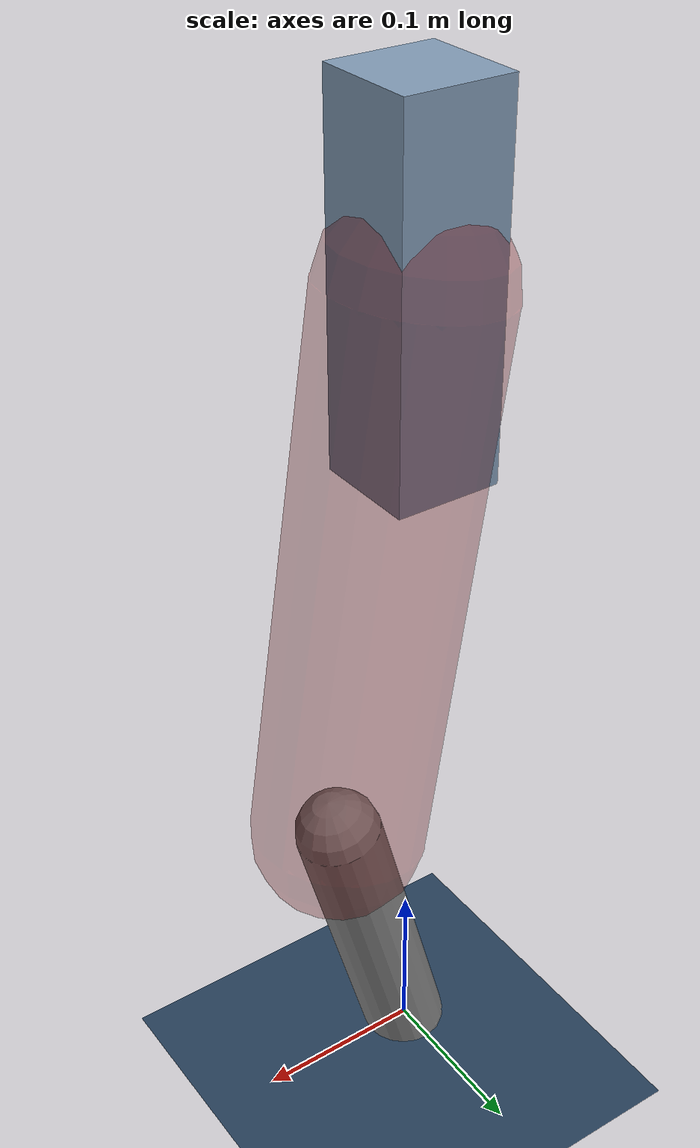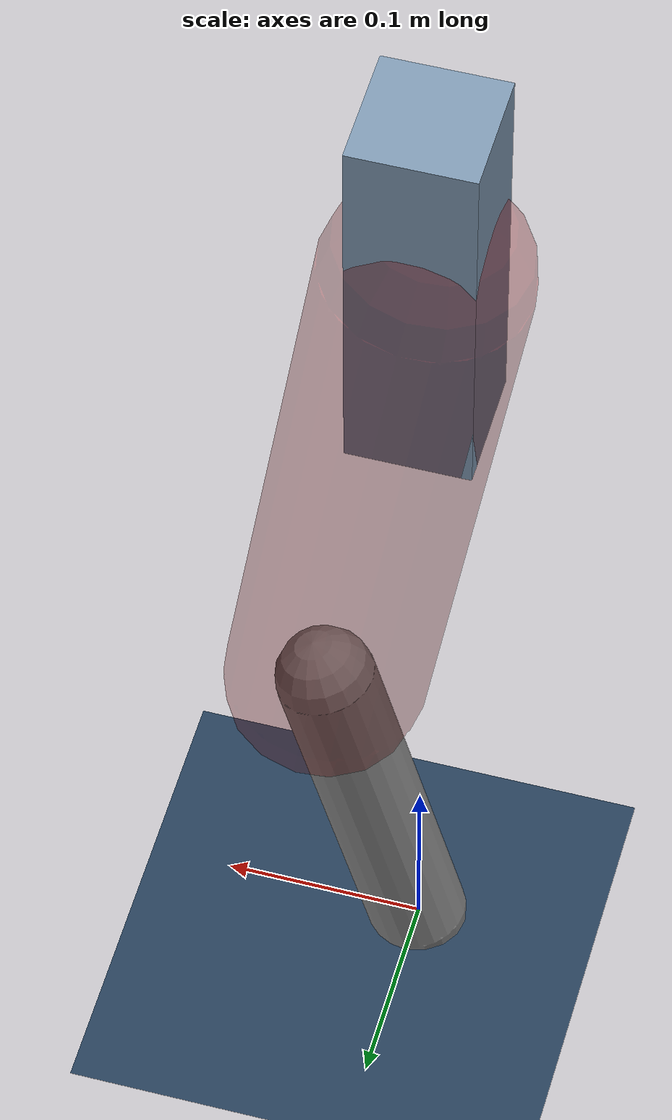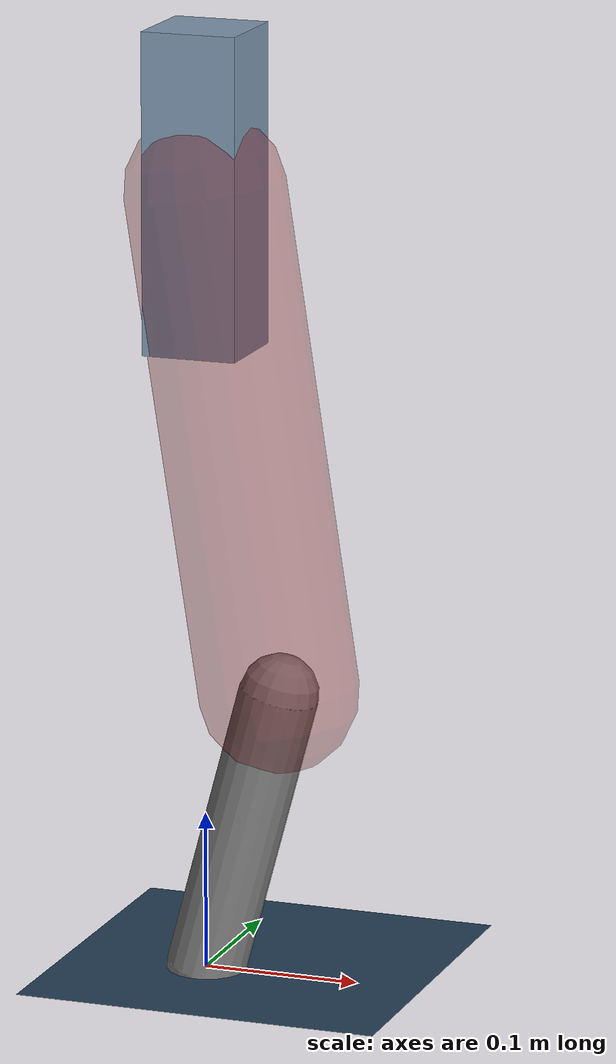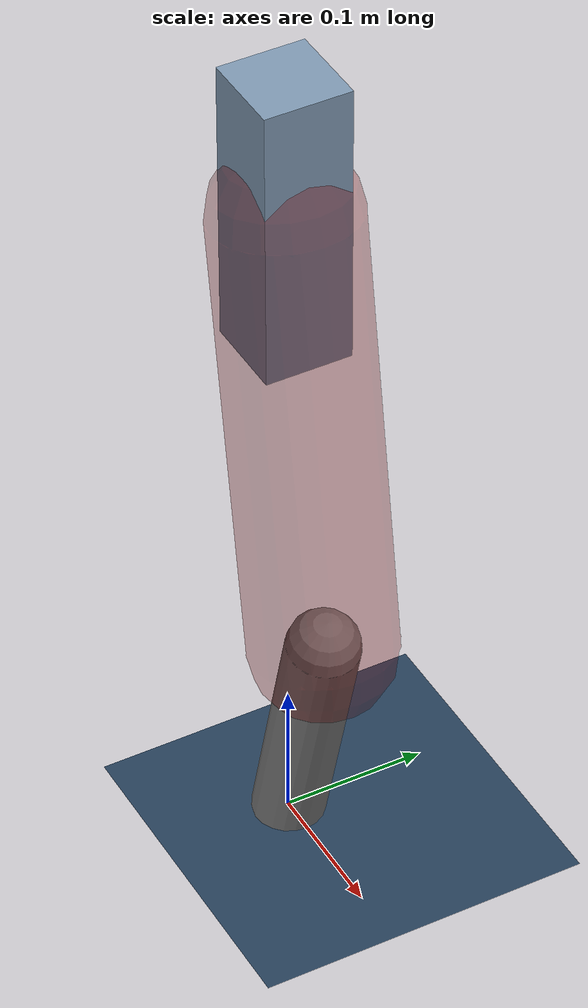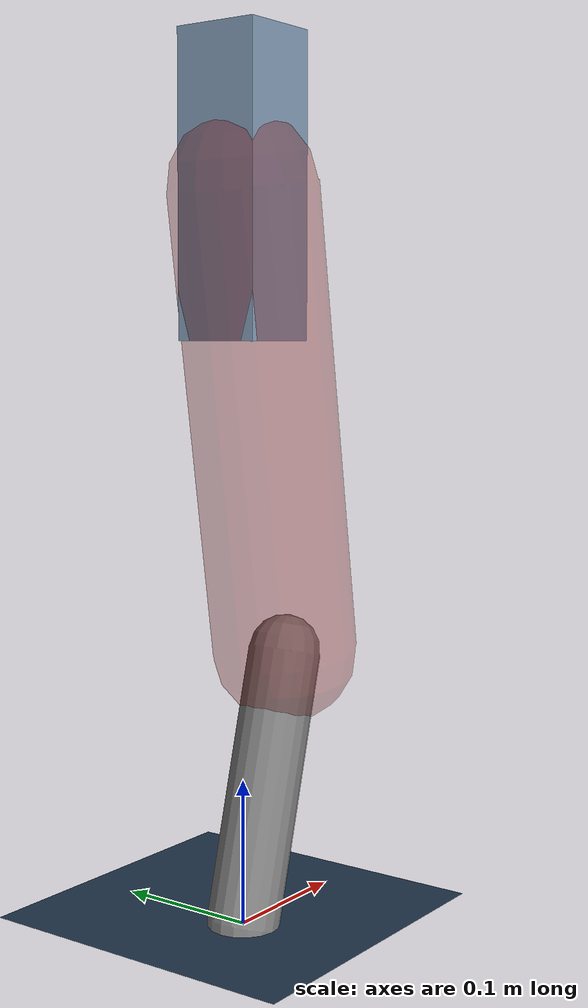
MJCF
<mujoco model="Hopper2D">
	<compiler inertiafromgeom="true" angle="radian" />
	<option timestep="0.001" integrator="implicit" cone="elliptic" solver="Newton" tolerance="1e-10" />

	<default>
		<geom contype="1" conaffinity="1" condim="3" friction="2 0.005 0.0001" solref="0.005 1" />
		<joint limited="true" damping="0.1" />
	</default>

	<asset>
		<texture name="skybox" type="skybox" builtin="gradient" rgb1=".4 .6 .8" rgb2="0 0 0" width="800" height="800" />
		<texture name="grid" type="2d" builtin="checker" rgb1=".1 .2 .3" rgb2=".2 .3 .4" width="300" height="300" mark="edge" markrgb=".2 .3 .4" />
		<material name="ground" texture="grid" texrepeat="1 1" texuniform="true" reflectance="0.1" />
		<material name="leg" rgba="0.5 0.6 0.7 1" />
	</asset>

	<worldbody>

		<geom name="floor" type="plane" size="5 5 0.25" material="ground" />

		<light directional="false" diffuse="0.8 0.8 0.8" specular="0.3 0.3 0.3" pos="0 0 2" dir="0 0 -1" />
		<light mode="targetbodycom" target="base" directional="false" diffuse="0.8 0.8 0.8" specular="0.3 0.3 0.3" pos="0 0 2" dir="0 0 -1" />

		<camera name="fixed" pos="0 -2 1" xyaxes="1 0 0 0 0 1" />
		<camera name="tracking" mode="trackcom" pos="0 -3 1" />

		<body name="root" pos="0 0 0.49604696655369607">
			<joint name="slide_x" type="slide" axis="1 0 0" range="-100 100" />
			<joint name="slide_z" type="slide" axis="0 0 1" range="0 10" />

			<body name="base" pos="0 0 0">
				<geom name="torso" type="box" size="0.03 0.03 0.1" mass="2.3200000000000003" material="leg" />

				<body name="link1" pos="0 0 0" euler="0 1.4179888967624128 0">
					<joint type="hinge" axis="0 -1 0" pos="0 0 0" name="hinge1" limited="true" range="-3.14 3.14" stiffness="0" damping="0.1" />
					<geom name="thigh" type="capsule" fromto="0 0 0 0.31751793468508827 0 0" size="0.05" rgba="0.5 0 0 0.3" mass="1.036450217118247" />

					<body name="link2" pos="0.31751793468508827 0 0" euler="0 0.4120574812942427 0">
						<joint type="hinge" axis="0 -1 0" pos="0 0 0" name="hinge2" limited="true" range="-3.14 3.14" stiffness="0" damping="0.1" />
						<geom name="shank" type="capsule" fromto="0 0 0 0.1885290318686078 0 0" size="0.025" mass="0.391176128681747" />

					</body>
				</body>
			</body>
		</body>
	</worldbody>

	<actuator>
		<motor name="torque1" joint="hinge1" ctrlrange="-84.08554353835376 84.08554353835376" ctrllimited="true" gear="1" />
		<motor name="torque2" joint="hinge2" ctrlrange="-117.0431543022176 117.0431543022176" ctrllimited="true" gear="1" />
	</actuator>
</mujoco>
